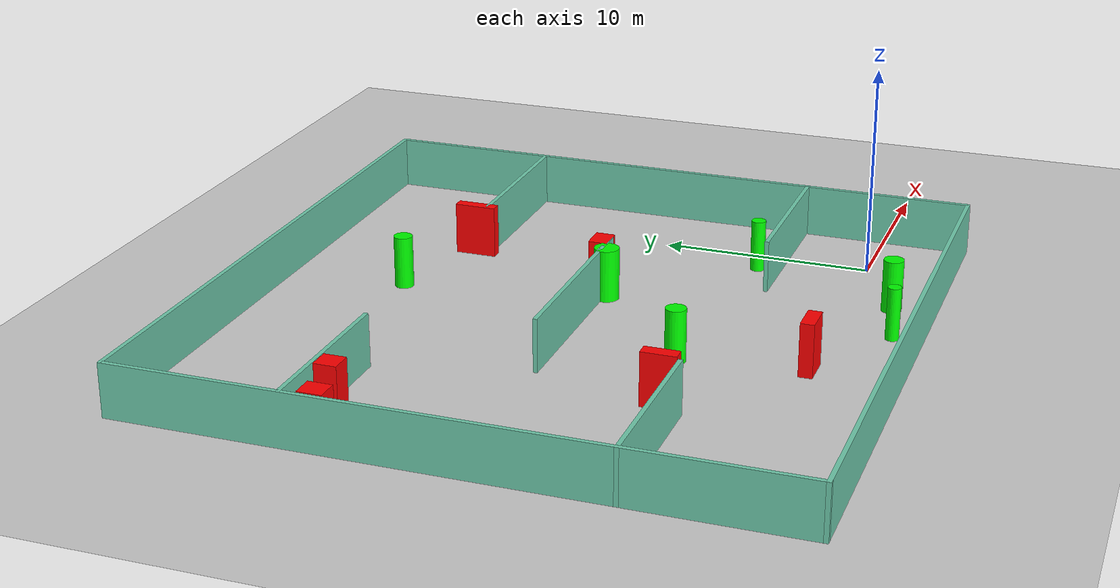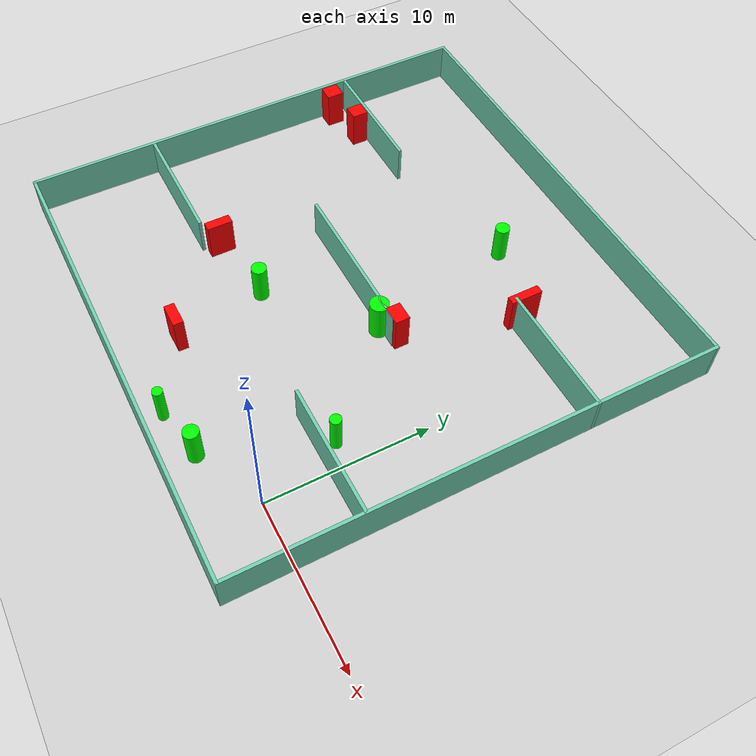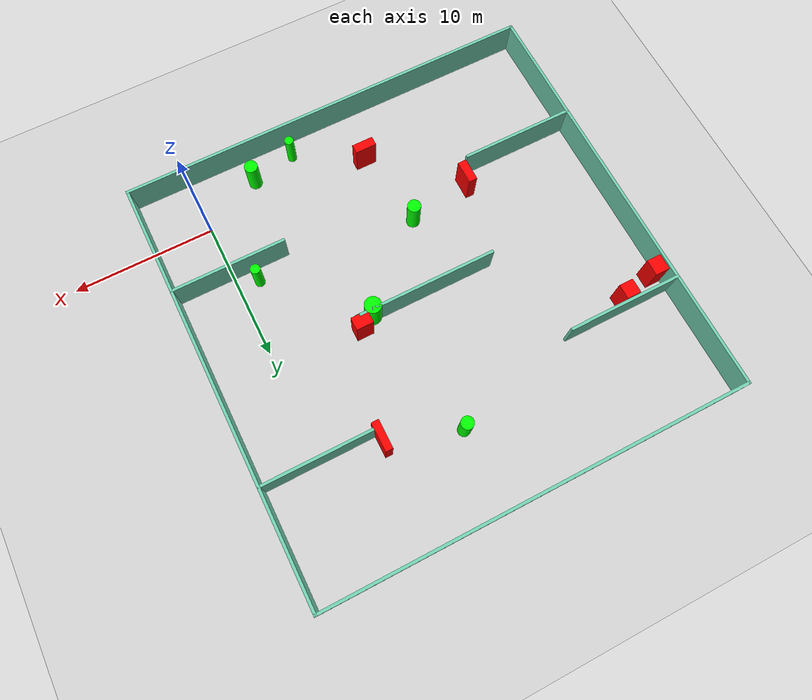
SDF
<sdf version="1.7">
 <world name="default">
  <light name="sun" type="directional">
   <pose>0 0 10 0 -0 0</pose>
   <diffuse>0.8 0.8 0.8 1</diffuse>
   <specular>0.2 0.2 0.2 1</specular>
   <attenuation>
    <range>1000</range>
    <constant>0.9</constant>
    <linear>0.01</linear>
    <quadratic>0.001</quadratic>
   </attenuation>
   <direction>-0.5 0.1 -0.9</direction>
   <spot><inner_angle>0</inner_angle><outer_angle>0</outer_angle><falloff>0</falloff></spot>
  </light>
  <model name="ground_plane">
   <static>1</static>
   <link name="link">
    <collision name="collision">
     <geometry><plane><normal>0 0 1</normal><size>100 100</size></plane></geometry>
     <surface>
      <contact><collide_bitmask>65535</collide_bitmask></contact>
      <friction><ode><mu>100</mu><mu2>50</mu2></ode></friction>
     </surface>
    </collision>
    <visual name="visual">
     <cast_shadows>0</cast_shadows>
     <geometry><plane><normal>0 0 1</normal><size>100 100</size></plane></geometry>
     <material>
      <script><uri>file://media/materials/scripts/gazebo.material</uri><name>Gazebo/Grey</name></script>
     </material>
    </visual>
   </link>
  </model>
  <gravity>0 0 -9.8</gravity>
  <magnetic_field>6e-06 2.3e-05 -4.2e-05</magnetic_field>
  <atmosphere type="adiabatic"/>
  <physics type="ode">
   <max_step_size>0.001</max_step_size>
   <real_time_factor>1</real_time_factor>
   <real_time_update_rate>1000</real_time_update_rate>
  </physics>
  <scene><ambient>0.4 0.4 0.4 1</ambient><background>0.7 0.7 0.7 1</background><shadows>1</shadows></scene>
  <spherical_coordinates>
   <surface_model>EARTH_WGS84</surface_model>
   <latitude_deg>0</latitude_deg>
   <longitude_deg>0</longitude_deg>
   <elevation>0</elevation>
   <heading_deg>0</heading_deg>
  </spherical_coordinates>
  <model name="my_base_walls">
   <link name="Wall_10">
    <collision name="Wall_10_Collision">
     <geometry><box><size>8.2 0.2 2.5</size></box></geometry>
     <pose>0 0 1.25 0 -0 0</pose>
    </collision>
    <visual name="Wall_10_Visual">
     <pose>0 0 1.25 0 -0 0</pose>
     <geometry><box><size>8.2 0.2 2.5</size></box></geometry>
     <material>
      <script><uri>file://media/materials/scripts/gazebo.material</uri><name>Gazebo/Grey</name></script>
      <ambient>0.435294 0.796078 0.67451 1</ambient>
     </material>
     <meta><layer>0</layer></meta>
    </visual>
    <pose>-11 -7 0 0 -0 0</pose>
   </link>
   <link name="Wall_12">
    <collision name="Wall_12_Collision">
     <geometry><box><size>8.2 0.2 2.5</size></box></geometry>
     <pose>0 0 1.25 0 -0 0</pose>
    </collision>
    <visual name="Wall_12_Visual">
     <pose>0 0 1.25 0 -0 0</pose>
     <geometry><box><size>8.2 0.2 2.5</size></box></geometry>
     <material>
      <script><uri>file://media/materials/scripts/gazebo.material</uri><name>Gazebo/Grey</name></script>
      <ambient>0.435294 0.796078 0.67451 1</ambient>
     </material>
     <meta><layer>0</layer></meta>
    </visual>
    <pose>-11 7 0 0 -0 0</pose>
   </link>
   <link name="Wall_14">
    <collision name="Wall_14_Collision">
     <geometry><box><size>8.2 0.2 2.5</size></box></geometry>
     <pose>0 0 1.25 0 -0 0</pose>
    </collision>
    <visual name="Wall_14_Visual">
     <pose>0 0 1.25 0 -0 0</pose>
     <geometry><box><size>8.2 0.2 2.5</size></box></geometry>
     <material>
      <script><uri>file://media/materials/scripts/gazebo.material</uri><name>Gazebo/Grey</name></script>
      <ambient>0.435294 0.796078 0.67451 1</ambient>
     </material>
     <meta><layer>0</layer></meta>
    </visual>
    <pose>11 7 0 0 -0 3.14159</pose>
   </link>
   <link name="Wall_16">
    <collision name="Wall_16_Collision">
     <geometry><box><size>10.2 0.2 2.5</size></box></geometry>
     <pose>0 0 1.25 0 -0 0</pose>
    </collision>
    <visual name="Wall_16_Visual">
     <pose>0 0 1.25 0 -0 0</pose>
     <geometry><box><size>10.2 0.2 2.5</size></box></geometry>
     <material>
      <script><uri>file://media/materials/scripts/gazebo.material</uri><name>Gazebo/Grey</name></script>
      <ambient>0.435294 0.796078 0.67451 1</ambient>
     </material>
     <meta><layer>0</layer></meta>
    </visual>
    <pose>0 0 0 0 -0 3.14159</pose>
   </link>
   <link name="Wall_2">
    <collision name="Wall_2_Collision">
     <geometry><box><size>30.2 0.2 2.5</size></box></geometry>
     <pose>0 0 1.25 0 -0 0</pose>
    </collision>
    <visual name="Wall_2_Visual">
     <pose>0 0 1.25 0 -0 0</pose>
     <geometry><box><size>30.2 0.2 2.5</size></box></geometry>
     <material>
      <script><uri>file://media/materials/scripts/gazebo.material</uri><name>Gazebo/Grey</name></script>
      <ambient>0.435294 0.796078 0.67451 1</ambient>
     </material>
     <meta><layer>0</layer></meta>
    </visual>
    <pose>0 -15 0 0 -0 3.14159</pose>
   </link>
   <link name="Wall_3">
    <collision name="Wall_3_Collision">
     <geometry><box><size>30.2 0.2 2.5</size></box></geometry>
     <pose>0 0 1.25 0 -0 0</pose>
    </collision>
    <visual name="Wall_3_Visual">
     <pose>0 0 1.25 0 -0 0</pose>
     <geometry><box><size>30.2 0.2 2.5</size></box></geometry>
     <material>
      <script><uri>file://media/materials/scripts/gazebo.material</uri><name>Gazebo/Grey</name></script>
      <ambient>0.435294 0.796078 0.67451 1</ambient>
     </material>
     <meta><layer>0</layer></meta>
    </visual>
    <pose>-15 0 0 0 -0 1.5708</pose>
   </link>
   <link name="Wall_4">
    <collision name="Wall_4_Collision">
     <geometry><box><size>30.2 0.2 2.5</size></box></geometry>
     <pose>0 0 1.25 0 -0 0</pose>
    </collision>
    <visual name="Wall_4_Visual">
     <pose>0 0 1.25 0 -0 0</pose>
     <geometry><box><size>30.2 0.2 2.5</size></box></geometry>
     <material>
      <script><uri>file://media/materials/scripts/gazebo.material</uri><name>Gazebo/Grey</name></script>
      <ambient>0.435294 0.796078 0.67451 1</ambient>
     </material>
     <meta><layer>0</layer></meta>
    </visual>
    <pose>0 15 0 0 -0 0</pose>
   </link>
   <link name="Wall_6">
    <collision name="Wall_6_Collision">
     <geometry><box><size>30.2 0.2 2.5</size></box></geometry>
     <pose>0 0 1.25 0 -0 0</pose>
    </collision>
    <visual name="Wall_6_Visual">
     <pose>0 0 1.25 0 -0 0</pose>
     <geometry><box><size>30.2 0.2 2.5</size></box></geometry>
     <material>
      <script><uri>file://media/materials/scripts/gazebo.material</uri><name>Gazebo/Grey</name></script>
      <ambient>0.435294 0.796078 0.67451 1</ambient>
     </material>
     <meta><layer>0</layer></meta>
    </visual>
    <pose>15 0 0 0 -0 1.5708</pose>
   </link>
   <link name="Wall_8">
    <collision name="Wall_8_Collision">
     <geometry><box><size>8.2 0.2 2.5</size></box></geometry>
     <pose>0 0 1.25 0 -0 0</pose>
    </collision>
    <visual name="Wall_8_Visual">
     <pose>0 0 1.25 0 -0 0</pose>
     <geometry><box><size>8.2 0.2 2.5</size></box></geometry>
     <material>
      <script><uri>file://media/materials/scripts/gazebo.material</uri><name>Gazebo/Grey</name></script>
      <ambient>0.435294 0.796078 0.67451 1</ambient>
     </material>
     <meta><layer>0</layer></meta>
    </visual>
    <pose>11 -7 0 0 -0 3.14159</pose>
   </link>
   <static>1</static>
   <pose>-11 11 0 0 -0 0</pose>
  </model>
  <model name="cylinder1">
   <static>1</static>
   <link name="link">
    <inertial>
     <mass>1</mass>
     <inertia><ixx>0.5</ixx><ixy>0</ixy><ixz>0</ixz><iyy>0.5</iyy><iyz>0</iyz><izz>1</izz></inertia>
    </inertial>
    <collision name="collision">
     <geometry><cylinder><radius>0.34225086358621665</radius><length>2.5</length></cylinder></geometry>
    </collision>
    <visual name="visual">
     <geometry><cylinder><radius>0.34225086358621665</radius><length>2.5</length></cylinder></geometry>
     <material>
      <ambient>0 1 0 1</ambient>
      <diffuse>0 1 0 1</diffuse>
      <specular>0.1 0.1 0.1 1</specular>
      <emissive>0 0 0 0</emissive>
     </material>
    </visual>
   </link>
   <pose>-1.4949741061411785 5.061018373331322 1.25 0 0 0</pose>
  </model>
  <model name="cylinder2">
   <static>1</static>
   <link name="link">
    <inertial>
     <mass>1</mass>
     <inertia><ixx>0.5</ixx><ixy>0</ixy><ixz>0</ixz><iyy>0.5</iyy><iyz>0</iyz><izz>1</izz></inertia>
    </inertial>
    <collision name="collision">
     <geometry><cylinder><radius>0.46998452464203133</radius><length>2.5</length></cylinder></geometry>
    </collision>
    <visual name="visual">
     <geometry><cylinder><radius>0.46998452464203133</radius><length>2.5</length></cylinder></geometry>
     <material>
      <ambient>0 1 0 1</ambient>
      <diffuse>0 1 0 1</diffuse>
      <specular>0.1 0.1 0.1 1</specular>
      <emissive>0 0 0 0</emissive>
     </material>
    </visual>
   </link>
   <pose>-4.280711066630978 -2.0109205865000166 1.25 0 0 0</pose>
  </model>
  <model name="cylinder3">
   <static>1</static>
   <link name="link">
    <inertial>
     <mass>1</mass>
     <inertia><ixx>0.5</ixx><ixy>0</ixy><ixz>0</ixz><iyy>0.5</iyy><iyz>0</iyz><izz>1</izz></inertia>
    </inertial>
    <collision name="collision">
     <geometry><cylinder><radius>0.5910059915035506</radius><length>2.5</length></cylinder></geometry>
    </collision>
    <visual name="visual">
     <geometry><cylinder><radius>0.5910059915035506</radius><length>2.5</length></cylinder></geometry>
     <material>
      <ambient>0 1 0 1</ambient>
      <diffuse>0 1 0 1</diffuse>
      <specular>0.1 0.1 0.1 1</specular>
      <emissive>0 0 0 0</emissive>
     </material>
    </visual>
   </link>
   <pose>-7.290068867728305 10.775710016131267 1.25 0 0 0</pose>
  </model>
  <model name="cylinder4">
   <static>1</static>
   <link name="link">
    <inertial>
     <mass>1</mass>
     <inertia><ixx>0.5</ixx><ixy>0</ixy><ixz>0</ixz><iyy>0.5</iyy><iyz>0</iyz><izz>1</izz></inertia>
    </inertial>
    <collision name="collision">
     <geometry><cylinder><radius>0.47155891677338857</radius><length>2.5</length></cylinder></geometry>
    </collision>
    <visual name="visual">
     <geometry><cylinder><radius>0.47155891677338857</radius><length>2.5</length></cylinder></geometry>
     <material>
      <ambient>0 1 0 1</ambient>
      <diffuse>0 1 0 1</diffuse>
      <specular>0.1 0.1 0.1 1</specular>
      <emissive>0 0 0 0</emissive>
     </material>
    </visual>
   </link>
   <pose>-12.93223224243925 5.713367061057486 1.25 0 0 0</pose>
  </model>
  <model name="cylinder5">
   <static>1</static>
   <link name="link">
    <inertial>
     <mass>1</mass>
     <inertia><ixx>0.5</ixx><ixy>0</ixy><ixz>0</ixz><iyy>0.5</iyy><iyz>0</iyz><izz>1</izz></inertia>
    </inertial>
    <collision name="collision">
     <geometry><cylinder><radius>0.44418130453229066</radius><length>2.5</length></cylinder></geometry>
    </collision>
    <visual name="visual">
     <geometry><cylinder><radius>0.44418130453229066</radius><length>2.5</length></cylinder></geometry>
     <material>
      <ambient>0 1 0 1</ambient>
      <diffuse>0 1 0 1</diffuse>
      <specular>0.1 0.1 0.1 1</specular>
      <emissive>0 0 0 0</emissive>
     </material>
    </visual>
   </link>
   <pose>-9.06293672116826 20.26014113077452 1.25 0 0 0</pose>
  </model>
  <model name="cylinder6">
   <static>1</static>
   <link name="link">
    <inertial>
     <mass>1</mass>
     <inertia><ixx>0.5</ixx><ixy>0</ixy><ixz>0</ixz><iyy>0.5</iyy><iyz>0</iyz><izz>1</izz></inertia>
    </inertial>
    <collision name="collision">
     <geometry><cylinder><radius>0.31170149035333367</radius><length>2.5</length></cylinder></geometry>
    </collision>
    <visual name="visual">
     <geometry><cylinder><radius>0.31170149035333367</radius><length>2.5</length></cylinder></geometry>
     <material>
      <ambient>0 1 0 1</ambient>
      <diffuse>0 1 0 1</diffuse>
      <specular>0.1 0.1 0.1 1</specular>
      <emissive>0 0 0 0</emissive>
     </material>
    </visual>
   </link>
   <pose>-7.463246199053623 -2.6763126307292118 1.25 0 0 0</pose>
  </model>
  <model name="box1">
   <static>1</static>
   <link name="link">
    <inertial>
     <mass>1</mass>
     <inertia><ixx>0.083</ixx><ixy>0</ixy><ixz>0</ixz><iyy>0.083</iyy><iyz>0</iyz><izz>0.083</izz></inertia>
    </inertial>
    <collision name="collision">
     <geometry><box><size>1.0276529622305148 1.115276277267209 2.5</size></box></geometry>
    </collision>
    <visual name="visual">
     <geometry><box><size>1.0276529622305148 1.115276277267209 2.5</size></box></geometry>
     <material>
      <ambient>1 0 0 1</ambient>
      <diffuse>1 0 0 1</diffuse>
      <specular>0.1 0.1 0.1 1</specular>
      <emissive>0 0 0 0</emissive>
     </material>
    </visual>
    <sensor name="my_contact" type="contact">
     <contact><collision>box_collision</collision><topic>__default_topic__</topic></contact>
    </sensor>
   </link>
   <pose>-25.298401566493222 16.75406048186781 1.25 0 0 0</pose>
  </model>
  <model name="box2">
   <static>1</static>
   <link name="link">
    <inertial>
     <mass>1</mass>
     <inertia><ixx>0.083</ixx><ixy>0</ixy><ixz>0</ixz><iyy>0.083</iyy><iyz>0</iyz><izz>0.083</izz></inertia>
    </inertial>
    <collision name="collision">
     <geometry><box><size>0.5251734754065571 1.9965705343246059 2.5</size></box></geometry>
    </collision>
    <visual name="visual">
     <geometry><box><size>0.5251734754065571 1.9965705343246059 2.5</size></box></geometry>
     <material>
      <ambient>1 0 0 1</ambient>
      <diffuse>1 0 0 1</diffuse>
      <specular>0.1 0.1 0.1 1</specular>
      <emissive>0 0 0 0</emissive>
     </material>
    </visual>
    <sensor name="my_contact" type="contact">
     <contact><collision>box_collision</collision><topic>__default_topic__</topic></contact>
    </sensor>
   </link>
   <pose>-4.020509951527297 18.58537620962899 1.25 0 0 0</pose>
  </model>
  <model name="box3">
   <static>1</static>
   <link name="link">
    <inertial>
     <mass>1</mass>
     <inertia><ixx>0.083</ixx><ixy>0</ixy><ixz>0</ixz><iyy>0.083</iyy><iyz>0</iyz><izz>0.083</izz></inertia>
    </inertial>
    <collision name="collision">
     <geometry><box><size>1.2161530874979791 0.9081387904995726 2.5</size></box></geometry>
    </collision>
    <visual name="visual">
     <geometry><box><size>1.2161530874979791 0.9081387904995726 2.5</size></box></geometry>
     <material>
      <ambient>1 0 0 1</ambient>
      <diffuse>1 0 0 1</diffuse>
      <specular>0.1 0.1 0.1 1</specular>
      <emissive>0 0 0 0</emissive>
     </material>
    </visual>
    <sensor name="my_contact" type="contact">
     <contact><collision>box_collision</collision><topic>__default_topic__</topic></contact>
    </sensor>
   </link>
   <pose>-6.210855517520528 11.390656721861632 1.25 0 0 0</pose>
  </model>
  <model name="box4">
   <static>1</static>
   <link name="link">
    <inertial>
     <mass>1</mass>
     <inertia><ixx>0.083</ixx><ixy>0</ixy><ixz>0</ixz><iyy>0.083</iyy><iyz>0</iyz><izz>0.083</izz></inertia>
    </inertial>
    <collision name="collision">
     <geometry><box><size>1.004311447088988 1.0335388008667326 2.5</size></box></geometry>
    </collision>
    <visual name="visual">
     <geometry><box><size>1.004311447088988 1.0335388008667326 2.5</size></box></geometry>
     <material>
      <ambient>1 0 0 1</ambient>
      <diffuse>1 0 0 1</diffuse>
      <specular>0.1 0.1 0.1 1</specular>
      <emissive>0 0 0 0</emissive>
     </material>
    </visual>
    <sensor name="my_contact" type="contact">
     <contact><collision>box_collision</collision><topic>__default_topic__</topic></contact>
    </sensor>
   </link>
   <pose>-22.74510215078728 17.341694538946882 1.25 0 0 0</pose>
  </model>
  <model name="box5">
   <static>1</static>
   <link name="link">
    <inertial>
     <mass>1</mass>
     <inertia><ixx>0.083</ixx><ixy>0</ixy><ixz>0</ixz><iyy>0.083</iyy><iyz>0</iyz><izz>0.083</izz></inertia>
    </inertial>
    <collision name="collision">
     <geometry><box><size>0.6127591618614183 1.6048055214274586 2.5</size></box></geometry>
    </collision>
    <visual name="visual">
     <geometry><box><size>0.6127591618614183 1.6048055214274586 2.5</size></box></geometry>
     <material>
      <ambient>1 0 0 1</ambient>
      <diffuse>1 0 0 1</diffuse>
      <specular>0.1 0.1 0.1 1</specular>
      <emissive>0 0 0 0</emissive>
     </material>
    </visual>
    <sensor name="my_contact" type="contact">
     <contact><collision>box_collision</collision><topic>__default_topic__</topic></contact>
    </sensor>
   </link>
   <pose>-17.43507880082074 5.007773946716879 1.25 0 0 0</pose>
  </model>
  <model name="box6">
   <static>1</static>
   <link name="link">
    <inertial>
     <mass>1</mass>
     <inertia><ixx>0.083</ixx><ixy>0</ixy><ixz>0</ixz><iyy>0.083</iyy><iyz>0</iyz><izz>0.083</izz></inertia>
    </inertial>
    <collision name="collision">
     <geometry><box><size>1.5157744336533356 0.6346369263081774 2.5</size></box></geometry>
    </collision>
    <visual name="visual">
     <geometry><box><size>1.5157744336533356 0.6346369263081774 2.5</size></box></geometry>
     <material>
      <ambient>1 0 0 1</ambient>
      <diffuse>1 0 0 1</diffuse>
      <specular>0.1 0.1 0.1 1</specular>
      <emissive>0 0 0 0</emissive>
     </material>
    </visual>
    <sensor name="my_contact" type="contact">
     <contact><collision>box_collision</collision><topic>__default_topic__</topic></contact>
    </sensor>
   </link>
   <pose>-11.986621650701778 -0.0026778771864788276 1.25 0 0 0</pose>
  </model>
 </world>
</sdf>
